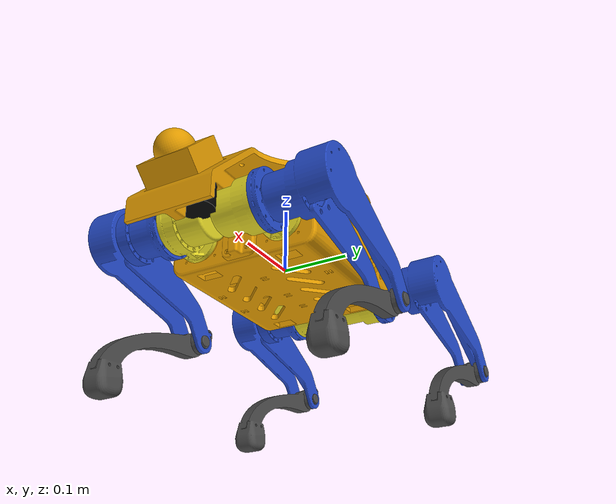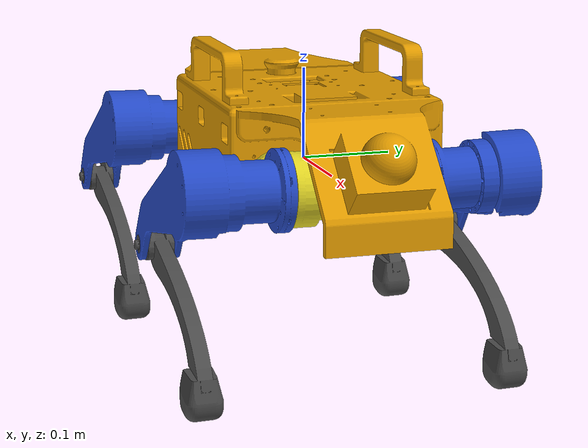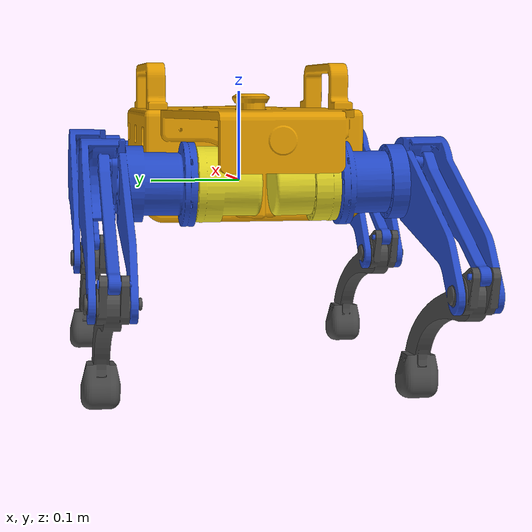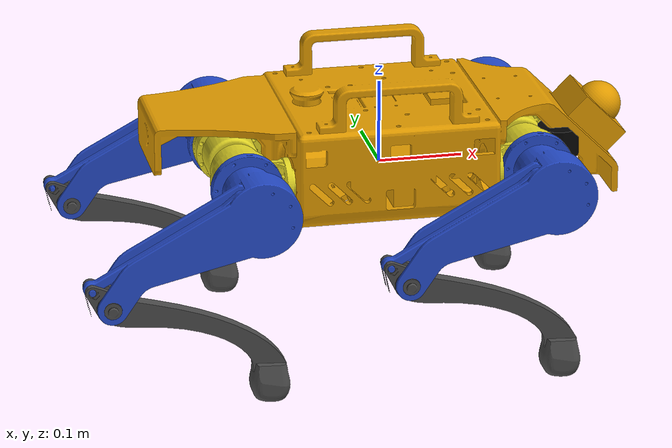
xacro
<?xml version="1.0"?>
<robot name="dog" xmlns:xacro="http://www.ros.org/wiki/xacro">

    <xacro:include filename="./const.xacro"/>
    <xacro:include filename="./ros2_control.xacro"/>
    <xacro:include filename="./leg.xacro"/>

    <link name="TORSO">
        <inertial>
            <origin xyz="${torso_com_x} ${torso_com_y} ${torso_com_z}"/>
            <mass value="${torso_mass}"/>
            <inertia ixx="${torso_ixx}" ixy="0" ixz="0" iyy="${torso_iyy}" iyz="0" izz="${torso_izz}"/>
        </inertial>
        <visual>
            <geometry>
                <mesh filename="${mesh_path}/torso.STL"/>
            </geometry>
        </visual>
        <collision>
          <origin xyz="0 0 0.018"/>
          <geometry>
            <box size="0.25 0.232 0.11"/>
          </geometry>
        </collision>
    </link>

    <link name="imu_link">
        <inertial>
            <mass value="0.1"/>
            <origin xyz="0 0 0" rpy="0 0 0"/>
            <inertia ixx="0.001" ixy="0.0" ixz="0.0" iyy="0.001" iyz="0.0" izz="0.001"/>
        </inertial>
    </link>

    <joint name="imu_joint" type="fixed">
        <parent link="TORSO"/>
        <child link="imu_link"/>
        <origin xyz="0 0 0" rpy="0 0 0"/>
    </joint>
    <gazebo reference="imu_joint">
            <preserveFixedJoint>true</preserveFixedJoint>
    </gazebo>

    <link name="base_link"/>
    <joint name="base_joint" type="fixed">
        <parent link="base_link"/>
        <child link="TORSO"/>
        <origin xyz="0 0 0" rpy="0 0 0"/>
    </joint>

    <!-- 仿真用前向 2D 雷达，输出 PointCloud2 到 /points。 -->
    <link name="lidar_link">
        <inertial>
            <mass value="0.05"/>
            <origin xyz="0 0 0" rpy="0 0 0"/>
            <inertia ixx="0.00002" ixy="0.0" ixz="0.0" iyy="0.00002" iyz="0.0" izz="0.00002"/>
        </inertial>
        <visual>
            <geometry>
                <cylinder radius="0.025" length="0.035"/>
            </geometry>
            <material name="lidar_black">
                <color rgba="0.02 0.02 0.02 1.0"/>
            </material>
        </visual>
        <collision>
            <geometry>
                <cylinder radius="0.025" length="0.035"/>
            </geometry>
        </collision>
    </link>

    <joint name="lidar_joint" type="fixed">
        <parent link="TORSO"/>
        <child link="lidar_link"/>
        <origin xyz="0.22 0 0.01" rpy="0 0 0"/>
    </joint>

    <gazebo reference="lidar_link">
      <sensor name="front_lidar" type="ray">
        <always_on>true</always_on>
        <visualize>true</visualize>
        <update_rate>15</update_rate>
        <ray>
          <scan>
            <horizontal>
              <samples>181</samples>
              <resolution>1</resolution>
              <min_angle>-1.0472</min_angle>
              <max_angle>1.0472</max_angle>
            </horizontal>
          </scan>
          <range>
            <min>0.12</min>
            <max>5.0</max>
            <resolution>0.01</resolution>
          </range>
          <noise>
            <type>gaussian</type>
            <mean>0.0</mean>
            <stddev>0.01</stddev>
          </noise>
        </ray>
        <plugin name="front_lidar_points" filename="libgazebo_ros_ray_sensor.so">
          <ros>
            <remapping>~/out:=/points</remapping>
          </ros>
          <output_type>sensor_msgs/PointCloud2</output_type>
          <frame_name>lidar_link</frame_name>
        </plugin>
      </sensor>
    </gazebo>

    <xacro:dog_leg name="LF" mirror="1" f_b="1"/>
    <xacro:dog_leg name="LH" mirror="1" f_b="-1"/>
    <xacro:dog_leg name="RF" mirror="-1" f_b="1"/>
    <xacro:dog_leg name="RH" mirror="-1" f_b="-1"/>

    <ros2_control name="dog_System" type="system">
        <hardware>
            <plugin>gazebo_ros2_control/GazeboSystem</plugin>
        </hardware>

        <xacro:leg_control_interface name="LF"/>
        <xacro:leg_control_interface name="RF"/>
        <xacro:leg_control_interface name="LH"/>
        <xacro:leg_control_interface name="RH"/>
    </ros2_control>

    <gazebo reference="imu_link">
      <sensor name="imu_sensor" type="imu">
        <always_on>true</always_on>
        <update_rate>1000</update_rate>
        <imu>
          <orientation>
            <x><noise type="gaussian"><stddev>${cfg['controller_manager']['ros__parameters']['imu_params']['orientation']['variance']**0.5}</stddev></noise></x>
            <y><noise type="gaussian"><stddev>${cfg['controller_manager']['ros__parameters']['imu_params']['orientation']['variance']**0.5}</stddev></noise></y>
            <z><noise type="gaussian"><stddev>${cfg['controller_manager']['ros__parameters']['imu_params']['orientation']['variance']**0.5}</stddev></noise></z>
          </orientation>
          <linear_acceleration>
            <x><noise type="gaussian"><stddev>${cfg['controller_manager']['ros__parameters']['imu_params']['accel']['variance']**0.5}</stddev><bias_mean>${cfg['controller_manager']['ros__parameters']['imu_params']['accel']['bias_mean']}</bias_mean></noise></x>
            <y><noise type="gaussian"><stddev>${cfg['controller_manager']['ros__parameters']['imu_params']['accel']['variance']**0.5}</stddev><bias_mean>${cfg['controller_manager']['ros__parameters']['imu_params']['accel']['bias_mean']}</bias_mean></noise></y>
            <z><noise type="gaussian"><stddev>${cfg['controller_manager']['ros__parameters']['imu_params']['accel']['variance']**0.5}</stddev><bias_mean>${cfg['controller_manager']['ros__parameters']['imu_params']['accel']['bias_mean']}</bias_mean></noise></z>
          </linear_acceleration>
          <angular_velocity>
            <x><noise type="gaussian"><stddev>${cfg['controller_manager']['ros__parameters']['imu_params']['gyro']['variance']**0.5}</stddev><bias_mean>${cfg['controller_manager']['ros__parameters']['imu_params']['gyro']['bias_mean']}</bias_mean></noise></x>
            <y><noise type="gaussian"><stddev>${cfg['controller_manager']['ros__parameters']['imu_params']['gyro']['variance']**0.5}</stddev><bias_mean>${cfg['controller_manager']['ros__parameters']['imu_params']['gyro']['bias_mean']}</bias_mean></noise></y>
            <z><noise type="gaussian"><stddev>${cfg['controller_manager']['ros__parameters']['imu_params']['gyro']['variance']**0.5}</stddev><bias_mean>${cfg['controller_manager']['ros__parameters']['imu_params']['gyro']['bias_mean']}</bias_mean></noise></z>
          </angular_velocity>
        </imu>
      </sensor>
    </gazebo>

    <gazebo>
        <plugin filename="libgazebo_ros2_control.so" name="gazebo_ros2_control">
            <parameters>$(find dog_bringup)/config/robot_controllers.yaml</parameters>
            <robot_param>robot_description</robot_param>
            <robot_param_node>robot_state_publisher</robot_param_node>
        </plugin>
    </gazebo>
    <gazebo>
      <plugin name="dog_ground_truth" filename="libgazebo_ros_p3d.so">
        <ros>
          <remapping>odom:=/ground_truth</remapping>
        </ros>
        <body_name>base_link</body_name>
        <frame_name>world</frame_name>
        <update_rate>10.0</update_rate>
        <xyz_offset>0 0 0</xyz_offset>
        <rpy_offset>0 0 0</rpy_offset>
        <gaussian_noise>0.001</gaussian_noise>
      </plugin>
    </gazebo>
</robot>

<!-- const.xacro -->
<robot xmlns:xacro="http://www.ros.org/wiki/xacro">
    <!-- xacro ./dog.xacro > dog.urdf -->
    <xacro:property name="mesh_path" value="package://dog_bringup/meshes/cdut_dog"/>
    <xacro:property name="cfg" value="${xacro.load_yaml('$(find dog_bringup)/config/robot_controllers.yaml')}"/>

<!-- 躯干参数 -->
<xacro:property name="torso_mass" value="5.35"/>        <!-- 躯干质量(kg) -->
<xacro:property name="torso_com_x" value="0"/>            <!-- 躯干质心x轴坐标(m) -->
<xacro:property name="torso_com_y" value="0"/>            <!-- 躯干质心y轴坐标(m) -->
<xacro:property name="torso_com_z" value="0"/>            <!-- 躯干质心z轴坐标(m) -->
<xacro:property name="torso_ixx" value="0.014"/>        <!-- 躯干绕x轴转动惯量(kg·m²) -->
<xacro:property name="torso_iyy" value="0.014"/>        <!-- 躯干绕y轴转动惯量(kg·m²) -->
<xacro:property name="torso_izz" value="0.023333"/>        <!-- 躯干绕z轴转动惯量(kg·m²) -->

<xacro:property name="damping" value="0.05"/>             <!-- 阻尼系数 -->
<xacro:property name="friction" value="0.01"/>            <!-- 摩擦系数 -->
<!-- 髋关节参数 -->
<xacro:property name="hip_mass" value="0.53"/>           <!-- 髋关节质量(kg) -->
<xacro:property name="hip_com_x" value="0.043209"/>       <!-- 髋关节质心x轴坐标(m) -->
<xacro:property name="hip_com_y" value="-0.023751"/>      <!-- 髋关节质心y轴坐标(m) -->
<xacro:property name="hip_com_z" value="-0.000382"/>      <!-- 髋关节质心z轴坐标(m) -->
<xacro:property name="hip_ixx" value="0.000266"/>        <!-- 髋关节绕x轴转动惯量(kg·m²) -->
<xacro:property name="hip_iyy" value="0.000294"/>        <!-- 髋关节绕y轴转动惯量(kg·m²) -->
<xacro:property name="hip_izz" value="0.000288"/>        <!-- 髋关节绕z轴转动惯量(kg·m²) -->

<!-- 大腿参数 -->
<xacro:property name="thigh_mass" value="0.75"/>          <!-- 大腿质量(kg) -->
<xacro:property name="thigh_com_x" value="-0.000382"/>    <!-- 大腿质心x轴坐标(m) -->
<xacro:property name="thigh_com_y" value="0.064016"/>     <!-- 大腿质心y轴坐标(m) -->
<xacro:property name="thigh_com_z" value="-0.009246"/>    <!-- 大腿质心z轴坐标(m) -->
<xacro:property name="thigh_ixx" value="0.00041"/>       <!-- 大腿绕x轴转动惯量(kg·m²) -->
<xacro:property name="thigh_iyy" value="0.001228"/>       <!-- 大腿绕y轴转动惯量(kg·m²) -->
<xacro:property name="thigh_izz" value="0.000988"/>       <!-- 大腿绕z轴转动惯量(kg·m²) -->

<!-- 小腿参数 -->
<xacro:property name="shank_mass" value="0.084"/>         <!-- 小腿质量(kg) -->
<xacro:property name="shank_com_x" value="0.075085"/>     <!-- 小腿质心x轴坐标(m) -->
<xacro:property name="shank_com_y" value="0.000631"/>     <!-- 小腿质心y轴坐标(m) -->
<xacro:property name="shank_com_z" value="-0.027403"/>    <!-- 小腿质心z轴坐标(m) -->
<xacro:property name="shank_ixx" value="0.001"/>     <!-- 小腿绕x轴转动惯量(kg·m²) -->
<xacro:property name="shank_iyy" value="0.001"/>     <!-- 小腿绕y轴转动惯量(kg·m²) -->
<xacro:property name="shank_izz" value="0.001"/>    <!-- 小腿绕z轴转动惯量(kg·m²) -->

<!-- 脚部参数 -->
<xacro:property name="foot_mass" value="0.059"/>           <!-- 脚部质量(kg) -->
<xacro:property name="foot_radius" value="0.023"/>        <!-- 脚部半径(m) -->
<xacro:property name="foot_com_x" value="0.001491"/>      <!-- 小腿质心x轴坐标(m) -->
<xacro:property name="foot_com_y" value="-0.000261"/>     <!-- 小腿质心y轴坐标(m) -->
<xacro:property name="foot_com_z" value="0.013164"/>      <!-- 小腿质心z轴坐标(m) -->
<xacro:property name="foot_ixx" value="0.000015"/>          <!-- 脚部绕x轴转动惯量(kg·m²) -->
<xacro:property name="foot_iyy" value="0.000016"/>          <!-- 脚部绕y轴转动惯量(kg·m²) -->
<xacro:property name="foot_izz" value="0.000014"/>          <!-- 脚部绕z轴转动惯量(kg·m²) -->

<!-- 关节位置偏移参数 -->
<xacro:property name="hip_offset_x" value="0.12556"/>    <!-- 髋关节x轴方向偏移量(m) -->
<xacro:property name="hip_offset_y" value="0.06752"/>     <!-- 髋关节y轴方向偏移量(m) -->
<xacro:property name="hip_offset_z" value="0.007"/>     <!-- 髋关节z轴方向偏移量(m) -->

<xacro:property name="thigh_offset_x" value="0.0485"/>    <!-- 大腿x轴方向偏移量(m) -->
<xacro:property name="thigh_offset_y" value="0.004"/>    <!-- 大腿y轴方向偏移量(m) -->
<xacro:property name="thigh_offset_z" value="0"/>     <!-- 大腿z轴方向偏移量(m) -->

<xacro:property name="shank_offset_x" value="-0.176118"/>   <!-- 小腿x轴方向偏移量(m) -->
<xacro:property name="shank_offset_y" value="0.09439"/>   <!-- 小腿y轴方向偏移量(m) -->
<xacro:property name="shank_offset_z" value="-0.09319"/>     <!-- 小腿z轴方向偏移量(m) -->

<xacro:property name="foot_offset_x" value="0.183238"/>    <!-- 脚部x轴方向偏移量(m) -->
<xacro:property name="foot_offset_y" value="0.002132"/>   <!-- 脚部y轴方向偏移量(m) -->
<xacro:property name="foot_offset_z" value="-0.125966"/>   <!-- 脚部z轴方向偏移量(m) -->

<!-- 髋关节x轴关节限位&性能参数 -->
<xacro:property name="hipx_min" value="-0.5"/>          <!-- 髋x轴关节最小角度(rad，约-30°) -->
<xacro:property name="hipx_max" value="0.5"/>           <!-- 髋x轴关节最大角度(rad，约30°) -->
<xacro:property name="hipx_vel" value="26.2"/>            <!-- 髋x轴关节最大角速度(rad/s) -->
<xacro:property name="hipx_eff" value="24"/>              <!-- 髋x轴关节最大力矩(N·m) -->

<!-- 髋关节y轴关节限位&性能参数 -->
<xacro:property name="hipy_min" value="-2"/>           <!-- 髋y轴关节最小角度(rad) -->
<xacro:property name="hipy_max" value="1.6"/>           <!-- 髋y轴关节最大角度(rad，约18°) -->
<xacro:property name="hipy_vel" value="26.2"/>            <!-- 髋y轴关节最大角速度(rad/s) -->
<xacro:property name="hipy_eff" value="24"/>              <!-- 髋y轴关节最大力矩(N·m) -->

<!-- 膝关节限位&性能参数 -->
<xacro:property name="knee_min" value="-2"/>           <!-- 膝关节最小角度(rad，约30°) -->
<xacro:property name="knee_max" value="0.5"/>           <!-- 膝关节最大角度(rad，约160°) -->
<xacro:property name="knee_vel" value="17.3"/>            <!-- 膝关节最大角速度(rad/s) -->
<xacro:property name="knee_eff" value="36"/>              <!-- 膝关节最大力矩(N·m) -->

</robot>

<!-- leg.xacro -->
<robot xmlns:xacro="http://www.ros.org/wiki/xacro">

    <xacro:macro name="dog_leg" params="name mirror f_b">

        <link name="${name}_HIP">
            <inertial>
                <origin xyz="${hip_com_x} ${mirror * hip_com_y} ${hip_com_z}"/>
                <mass value="${hip_mass}"/>
                <inertia ixx="${hip_ixx}" ixy="0" ixz="0" iyy="${hip_iyy}" iyz="0" izz="${hip_izz}"/>
            </inertial>
            <visual>
                <geometry>
                    <mesh filename="${mesh_path}/hip.STL" scale="${f_b} ${mirror} 1"/>
                </geometry>
            </visual>
        </link>

        <joint name="${name}_HAA" type="revolute">
            <origin xyz="${f_b * hip_offset_x} ${mirror * hip_offset_y} ${hip_offset_z}"/>
            <parent link="TORSO"/>
            <child link="${name}_HIP"/>
            <axis xyz="-1 0 0"/>
            <limit lower="${hipx_min}" upper="${hipx_max}" effort="${hipx_eff}" velocity="${hipx_vel}"/>
            <dynamics damping="${damping}" friction="${friction}"/>
        </joint>

        <link name="${name}_THIGH">
            <inertial>
                <origin xyz="${thigh_com_x} ${mirror * thigh_com_y} ${thigh_com_z}"/>
                <mass value="${thigh_mass}"/>
                <inertia ixx="${thigh_ixx}" ixy="0" ixz="0" iyy="${thigh_iyy}" iyz="0" izz="${thigh_izz}"/>
            </inertial>
            <visual>
                <geometry>
                    <mesh filename="${mesh_path}/thigh.STL" scale="1 ${mirror} 1"/>
                </geometry>
            </visual>
            <collision>
                <origin xyz="-0.06 ${mirror * 0.095} -0.028" rpy="0 1.33 0"/>
                <geometry>
                    <box size="0.04 0.045 0.2"/>
                </geometry>
            </collision>
        </link>

        <joint name="${name}_HFE" type="revolute">
            <origin xyz="${f_b * thigh_offset_x} ${mirror * thigh_offset_y} ${thigh_offset_z}"/>
            <parent link="${name}_HIP"/>
            <child link="${name}_THIGH"/>
            <axis xyz="0 -1 0"/>
            <limit lower="${hipy_min}" upper="${hipy_max}" effort="${hipy_eff}" velocity="${hipy_vel}"/>
            <dynamics damping="${damping}" friction="${friction}"/>
        </joint>

        <link name="${name}_SHANK">
            <inertial>
                <origin xyz="${shank_com_x} ${shank_com_y} ${shank_com_z}"/>
                <mass value="${shank_mass}"/>
                <inertia ixx="${shank_ixx}" ixy="0" ixz="0" iyy="${shank_iyy}" iyz="0" izz="${shank_izz}"/>
            </inertial>
            <visual>
                <geometry>
                    <mesh filename="${mesh_path}/shank.STL" scale="1 1 1"/>
                </geometry>
            </visual>
                <collision>
                <origin xyz="0.04 0 -0.013" rpy="0 -1.3 0"/>
                <geometry>
                    <cylinder length="0.12" radius="0.015"/>
                </geometry>
            </collision>
            <collision>
                <origin xyz="0.15 0 -0.06" rpy="0 -1 0"/>
                <geometry>
                    <cylinder length="0.10" radius="0.015"/>
                </geometry>
            </collision>
        </link>

        <joint name="${name}_KFE" type="revolute">
            <origin xyz="${shank_offset_x} ${mirror * shank_offset_y} ${shank_offset_z}"/>
            <parent link="${name}_THIGH"/>
            <child link="${name}_SHANK"/>
            <axis xyz="0 -1 0"/>
            <limit lower="${knee_min}" upper="${knee_max}" effort="${knee_eff}" velocity="${knee_vel}"/>
            <dynamics damping="${damping}" friction="${friction}"/>
        </joint>

        <link name="${name}_FOOT">
            <collision name="${name}_FOOT_collision">
                <origin xyz="0 0 0.0128" rpy="0 0 0" />
                <geometry>
                    <sphere radius="${foot_radius}"/>
                </geometry>
            </collision>
            <inertial>
                <origin xyz="0 0 0" />
                <mass value="${foot_mass}"/>
                <inertia ixx="${foot_ixx}" ixy="0" ixz="0" iyy="${foot_iyy}" iyz="0" izz="${foot_izz}"/>
            </inertial>
        </link>

        <joint name="${name}_Ankle" type="fixed" dont_collapse="true">
            <parent link="${name}_SHANK"/>
            <child link="${name}_FOOT"/>
            <origin xyz="${foot_offset_x} ${mirror * foot_offset_y} ${foot_offset_z}"/>
        </joint>

        <gazebo reference="${name}_Ankle">
            <preserveFixedJoint>true</preserveFixedJoint>
        </gazebo>

        <gazebo reference="${name}_HIP">
            <mu1>0.2</mu1>
            <mu2>0.2</mu2>
            <material>Gazebo/Yellow</material>
            <self_collide>1</self_collide>
        </gazebo>

        <gazebo reference="${name}_THIGH">
            <mu1>0.2</mu1>
            <mu2>0.2</mu2>
            <material>Gazebo/Blue</material>
            <self_collide>0</self_collide>
            <kp value="1000000.0"/>
            <kd value="100.0"/>
        </gazebo>

        <gazebo reference="${name}_SHANK">
            <mu1>0.6</mu1>
            <mu2>0.6</mu2>
            <material>Gazebo/DarkGrey</material>
            <self_collide>1</self_collide>
        </gazebo>

        <gazebo reference="${name}_FOOT">
            <mu1>0.6</mu1>
            <mu2>0.6</mu2>
            <kp>1000000.0</kp>
            <kd>100.0</kd>
            <minDepth>0.001</minDepth>
            <self_collide>1</self_collide>
            <sensor name="${name}_contact_sensor" type="contact">
              <always_on>true</always_on>
              <update_rate>1000</update_rate>
              <contact>
                <collision>${name}_FOOT_collision</collision>
              </contact>
            </sensor>
        </gazebo>

    </xacro:macro>
</robot>
